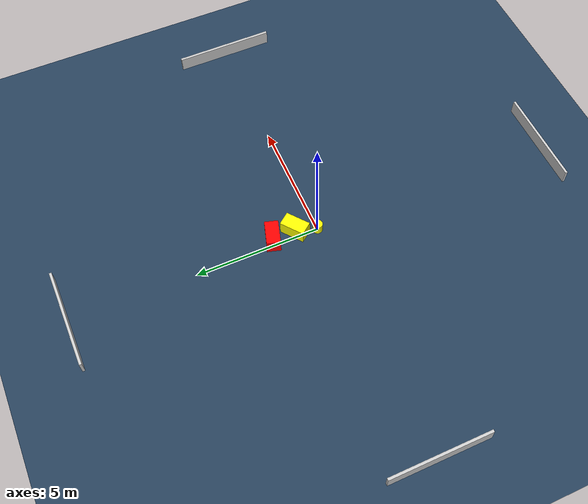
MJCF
<?xml version="1.0" ?>
<mujoco model="generated_environment">
  <option timestep="0.01" integrator="RK4" cone="elliptic"/>
  <default>
    <geom density="1"/>
  </default>
  <asset>
    <texture builtin="gradient" height="3072" name="skybox" rgb1="0.3 0.5 0.7" rgb2="0 0 0" type="skybox" width="512"/>
    <texture builtin="checker" height="300" name="groundplane" rgb1="0.2 0.3 0.4" rgb2="0.1 0.2 0.3" type="2d" width="300"/>
    <material name="groundplane" reflectance="0.2" texrepeat="5 5" texture="groundplane"/>
  </asset>
  <worldbody>
    <light dir="0 0 -1" directional="true" pos="0 0 1.5"/>
    <geom condim="3" friction="0.5 0.005 0.001" material="groundplane" name="floor" pos="0 0 0" size="0 0 0.05" type="plane"/>
    <body name="walls">
      <geom name="wall_1" condim="4" pos="-10.0 0.0 0.3" rgba="0.800000011920929 0.800000011920929 0.800000011920929 1.0" size="0.05 2.0 0.3" type="box"/>
      <geom name="wall_2" condim="4" pos="10.0 0.0 0.3" rgba="0.800000011920929 0.800000011920929 0.800000011920929 1.0" size="0.05 2.0 0.3" type="box"/>
      <geom name="wall_3" condim="4" pos="0.0 -10.0 0.3" rgba="0.800000011920929 0.800000011920929 0.800000011920929 1.0" size="2.0 0.05 0.3" type="box"/>
      <geom name="wall_4" condim="4" pos="0.0 10.0 0.3" rgba="0.800000011920929 0.800000011920929 0.800000011920929 1.0" size="2.0 0.05 0.3" type="box"/>
    </body>
    <body name="robot">
      <joint name="joint_x" type="slide" pos="0 0 0" axis="1 0 0"/>
      <joint name="joint_y" type="slide" pos="0 0 0" axis="0 1 0"/>
      <geom name="robot" type="cylinder" pos="0.0 0.0 0.2" size="0.2 0.2 0.0" mass="5.0" friction="1.0 0.005 0.0001" condim="4" rgba="1.0 1.0 0.0 1.0"/>
    </body>
    <body name="obstacle_1_movable">
      <geom name="obstacle_1_movable" condim="4" pos="0.26549217144435255 0.8362077711708885 0.3" euler="0 0 37.744383063151986" friction="0.0 0.005 0.001" rgba="1.0 1.0 0.0 1.0" size="0.5022303863981977 0.2799271879667968 0.3" type="box" mass="0.1"/>
      <joint type="free"/>
    </body>
    <body name="obstacle_2_static">
      <geom name="obstacle_2_static" condim="4" pos="0.25464303761170304 1.777655659679012 0.3" euler="0 0 253.1791017333448" friction="0.0 0.005 0.001" rgba="1.0 0.0 0.0 1.0" size="0.2739311229496509 0.4980184010645938 0.3" type="box"/>
    </body>
  </worldbody>
  <actuator>
    <motor name="actuator_x" joint="joint_x" gear="1" ctrlrange="-1 1"/>
    <motor name="actuator_y" joint="joint_y" gear="1" ctrlrange="-1 1"/>
  </actuator>
</mujoco>
